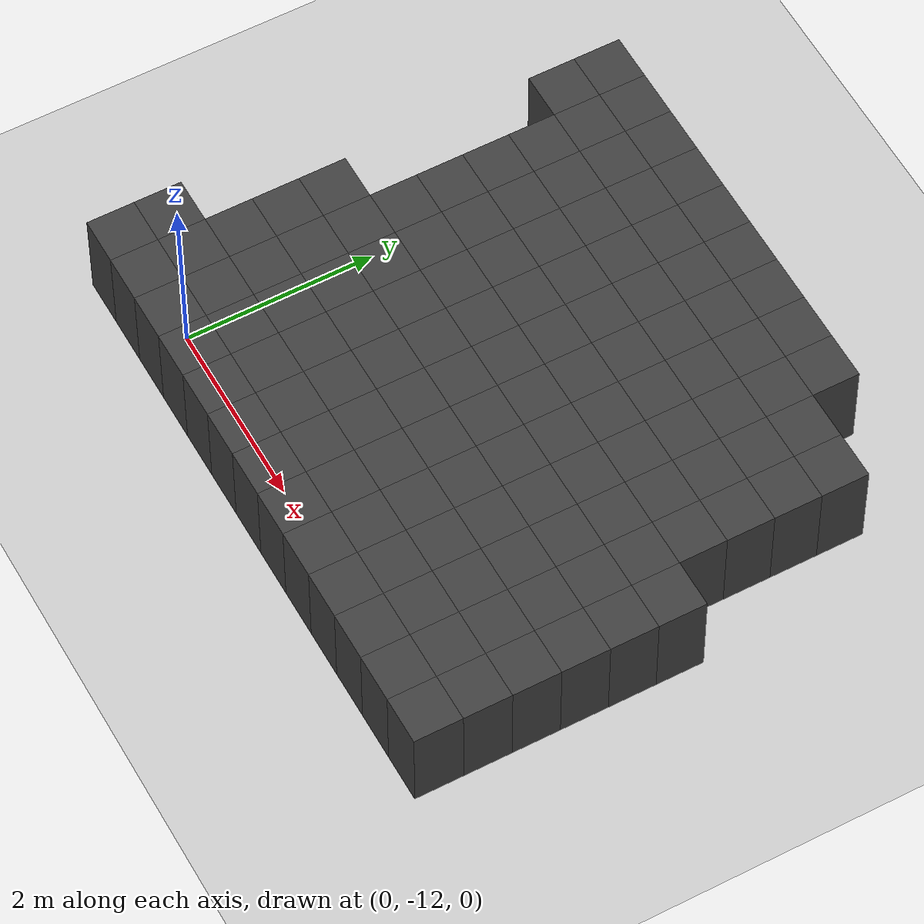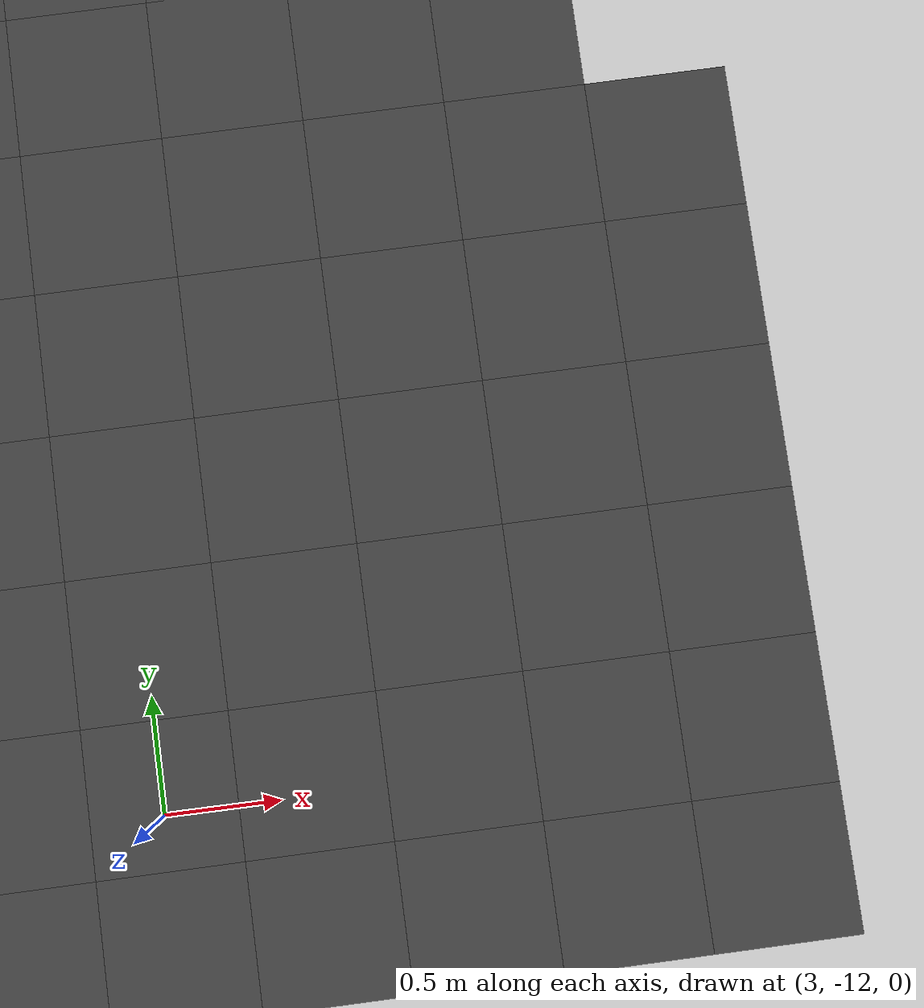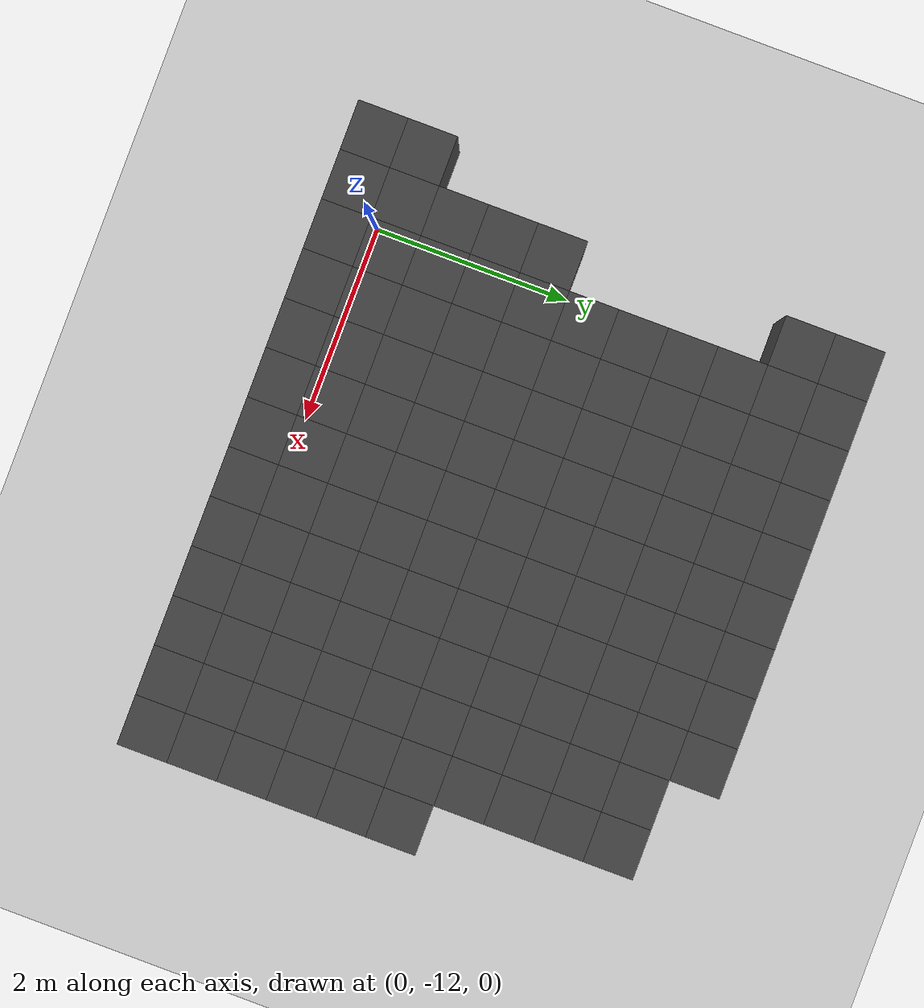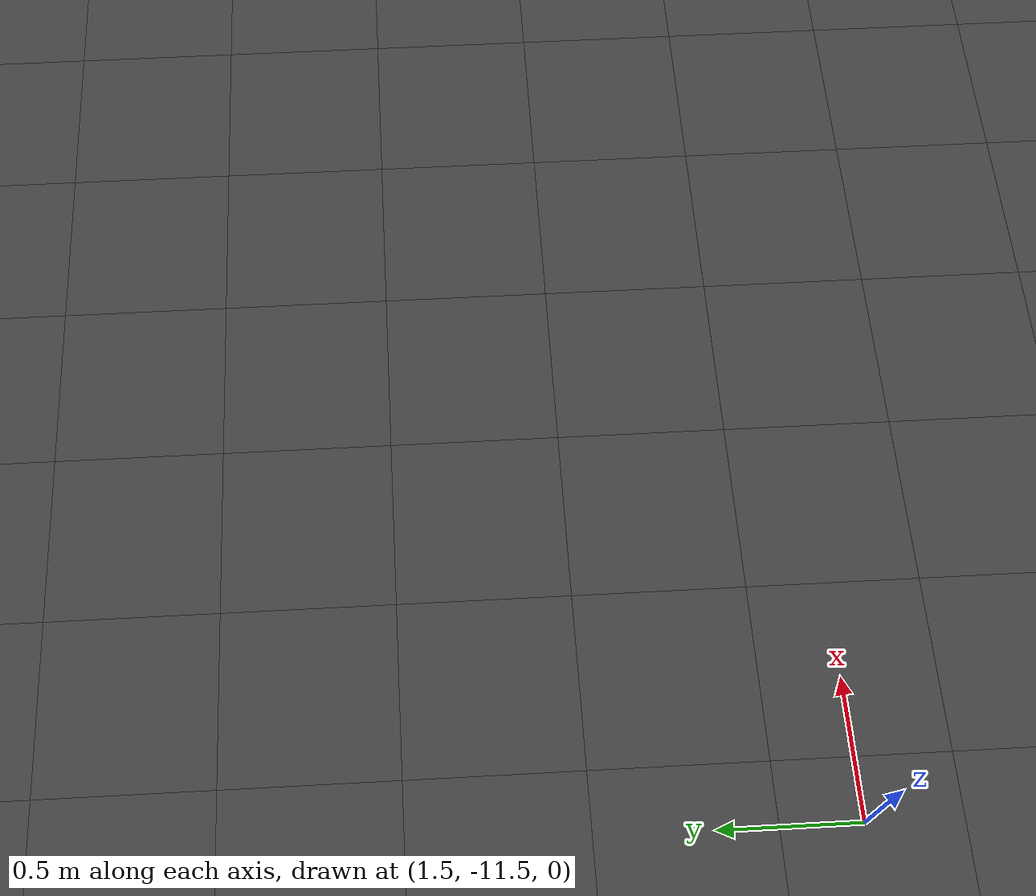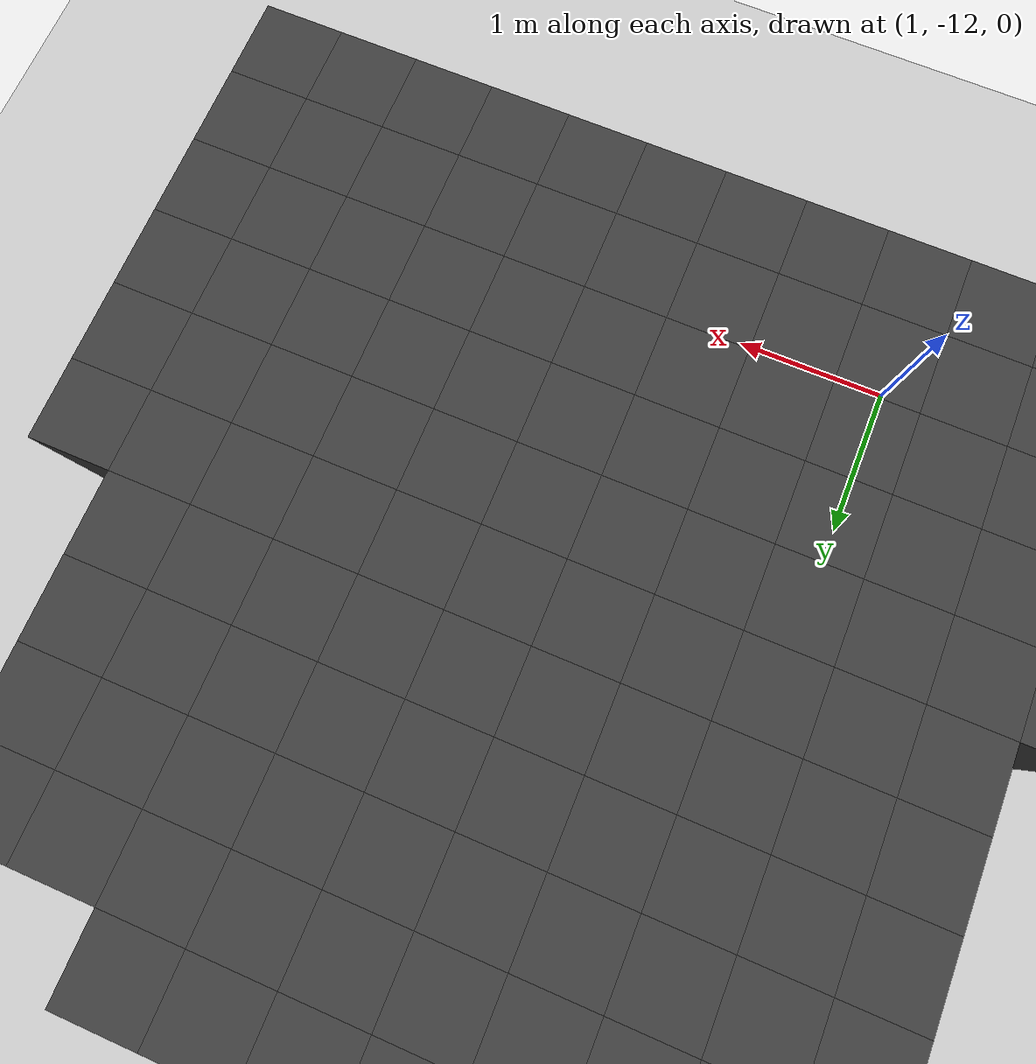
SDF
<sdf version="1.7">
 <world name="map_14074">
  <model name="ground_plane">
   <static>true</static>
   <link name="link">
    <collision name="collision">
     <geometry><plane><normal>0 0 1</normal><size>200 200</size></plane></geometry>
    </collision>
    <visual name="visual">
     <geometry><plane><normal>0 0 1</normal><size>200 200</size></plane></geometry>
     <material><ambient>0.8 0.8 0.8 1</ambient><diffuse>0.8 0.8 0.8 1</diffuse></material>
    </visual>
   </link>
  </model>
  <model name="maze_environment">
   <static>true</static>
   <link name="wall_1431">
    <pose>-0.250 -7.250 0.500 0 0 0</pose>
    <collision name="col"><geometry><box><size>0.5 0.5 1.0</size></box></geometry></collision>
    <visual name="vis">
     <geometry><box><size>0.5 0.5 1.0</size></box></geometry>
     <material><ambient>0.15 0.15 0.15 1</ambient><diffuse>0.25 0.25 0.25 1</diffuse></material>
    </visual>
   </link>
   <link name="wall_1432">
    <pose>0.250 -7.250 0.500 0 0 0</pose>
    <collision name="col"><geometry><box><size>0.5 0.5 1.0</size></box></geometry></collision>
    <visual name="vis">
     <geometry><box><size>0.5 0.5 1.0</size></box></geometry>
     <material><ambient>0.15 0.15 0.15 1</ambient><diffuse>0.25 0.25 0.25 1</diffuse></material>
    </visual>
   </link>
   <link name="wall_1433">
    <pose>0.750 -7.250 0.500 0 0 0</pose>
    <collision name="col"><geometry><box><size>0.5 0.5 1.0</size></box></geometry></collision>
    <visual name="vis">
     <geometry><box><size>0.5 0.5 1.0</size></box></geometry>
     <material><ambient>0.15 0.15 0.15 1</ambient><diffuse>0.25 0.25 0.25 1</diffuse></material>
    </visual>
   </link>
   <link name="wall_1434">
    <pose>1.250 -7.250 0.500 0 0 0</pose>
    <collision name="col"><geometry><box><size>0.5 0.5 1.0</size></box></geometry></collision>
    <visual name="vis">
     <geometry><box><size>0.5 0.5 1.0</size></box></geometry>
     <material><ambient>0.15 0.15 0.15 1</ambient><diffuse>0.25 0.25 0.25 1</diffuse></material>
    </visual>
   </link>
   <link name="wall_1435">
    <pose>1.750 -7.250 0.500 0 0 0</pose>
    <collision name="col"><geometry><box><size>0.5 0.5 1.0</size></box></geometry></collision>
    <visual name="vis">
     <geometry><box><size>0.5 0.5 1.0</size></box></geometry>
     <material><ambient>0.15 0.15 0.15 1</ambient><diffuse>0.25 0.25 0.25 1</diffuse></material>
    </visual>
   </link>
   <link name="wall_1436">
    <pose>2.250 -7.250 0.500 0 0 0</pose>
    <collision name="col"><geometry><box><size>0.5 0.5 1.0</size></box></geometry></collision>
    <visual name="vis">
     <geometry><box><size>0.5 0.5 1.0</size></box></geometry>
     <material><ambient>0.15 0.15 0.15 1</ambient><diffuse>0.25 0.25 0.25 1</diffuse></material>
    </visual>
   </link>
   <link name="wall_1437">
    <pose>2.750 -7.250 0.500 0 0 0</pose>
    <collision name="col"><geometry><box><size>0.5 0.5 1.0</size></box></geometry></collision>
    <visual name="vis">
     <geometry><box><size>0.5 0.5 1.0</size></box></geometry>
     <material><ambient>0.15 0.15 0.15 1</ambient><diffuse>0.25 0.25 0.25 1</diffuse></material>
    </visual>
   </link>
   <link name="wall_1438">
    <pose>3.250 -7.250 0.500 0 0 0</pose>
    <collision name="col"><geometry><box><size>0.5 0.5 1.0</size></box></geometry></collision>
    <visual name="vis">
     <geometry><box><size>0.5 0.5 1.0</size></box></geometry>
     <material><ambient>0.15 0.15 0.15 1</ambient><diffuse>0.25 0.25 0.25 1</diffuse></material>
    </visual>
   </link>
   <link name="wall_1439">
    <pose>3.750 -7.250 0.500 0 0 0</pose>
    <collision name="col"><geometry><box><size>0.5 0.5 1.0</size></box></geometry></collision>
    <visual name="vis">
     <geometry><box><size>0.5 0.5 1.0</size></box></geometry>
     <material><ambient>0.15 0.15 0.15 1</ambient><diffuse>0.25 0.25 0.25 1</diffuse></material>
    </visual>
   </link>
   <link name="wall_1456">
    <pose>-0.250 -7.750 0.500 0 0 0</pose>
    <collision name="col"><geometry><box><size>0.5 0.5 1.0</size></box></geometry></collision>
    <visual name="vis">
     <geometry><box><size>0.5 0.5 1.0</size></box></geometry>
     <material><ambient>0.15 0.15 0.15 1</ambient><diffuse>0.25 0.25 0.25 1</diffuse></material>
    </visual>
   </link>
   <link name="wall_1457">
    <pose>0.250 -7.750 0.500 0 0 0</pose>
    <collision name="col"><geometry><box><size>0.5 0.5 1.0</size></box></geometry></collision>
    <visual name="vis">
     <geometry><box><size>0.5 0.5 1.0</size></box></geometry>
     <material><ambient>0.15 0.15 0.15 1</ambient><diffuse>0.25 0.25 0.25 1</diffuse></material>
    </visual>
   </link>
   <link name="wall_1458">
    <pose>0.750 -7.750 0.500 0 0 0</pose>
    <collision name="col"><geometry><box><size>0.5 0.5 1.0</size></box></geometry></collision>
    <visual name="vis">
     <geometry><box><size>0.5 0.5 1.0</size></box></geometry>
     <material><ambient>0.15 0.15 0.15 1</ambient><diffuse>0.25 0.25 0.25 1</diffuse></material>
    </visual>
   </link>
   <link name="wall_1459">
    <pose>1.250 -7.750 0.500 0 0 0</pose>
    <collision name="col"><geometry><box><size>0.5 0.5 1.0</size></box></geometry></collision>
    <visual name="vis">
     <geometry><box><size>0.5 0.5 1.0</size></box></geometry>
     <material><ambient>0.15 0.15 0.15 1</ambient><diffuse>0.25 0.25 0.25 1</diffuse></material>
    </visual>
   </link>
   <link name="wall_1460">
    <pose>1.750 -7.750 0.500 0 0 0</pose>
    <collision name="col"><geometry><box><size>0.5 0.5 1.0</size></box></geometry></collision>
    <visual name="vis">
     <geometry><box><size>0.5 0.5 1.0</size></box></geometry>
     <material><ambient>0.15 0.15 0.15 1</ambient><diffuse>0.25 0.25 0.25 1</diffuse></material>
    </visual>
   </link>
   <link name="wall_1461">
    <pose>2.250 -7.750 0.500 0 0 0</pose>
    <collision name="col"><geometry><box><size>0.5 0.5 1.0</size></box></geometry></collision>
    <visual name="vis">
     <geometry><box><size>0.5 0.5 1.0</size></box></geometry>
     <material><ambient>0.15 0.15 0.15 1</ambient><diffuse>0.25 0.25 0.25 1</diffuse></material>
    </visual>
   </link>
   <link name="wall_1462">
    <pose>2.750 -7.750 0.500 0 0 0</pose>
    <collision name="col"><geometry><box><size>0.5 0.5 1.0</size></box></geometry></collision>
    <visual name="vis">
     <geometry><box><size>0.5 0.5 1.0</size></box></geometry>
     <material><ambient>0.15 0.15 0.15 1</ambient><diffuse>0.25 0.25 0.25 1</diffuse></material>
    </visual>
   </link>
   <link name="wall_1463">
    <pose>3.250 -7.750 0.500 0 0 0</pose>
    <collision name="col"><geometry><box><size>0.5 0.5 1.0</size></box></geometry></collision>
    <visual name="vis">
     <geometry><box><size>0.5 0.5 1.0</size></box></geometry>
     <material><ambient>0.15 0.15 0.15 1</ambient><diffuse>0.25 0.25 0.25 1</diffuse></material>
    </visual>
   </link>
   <link name="wall_1464">
    <pose>3.750 -7.750 0.500 0 0 0</pose>
    <collision name="col"><geometry><box><size>0.5 0.5 1.0</size></box></geometry></collision>
    <visual name="vis">
     <geometry><box><size>0.5 0.5 1.0</size></box></geometry>
     <material><ambient>0.15 0.15 0.15 1</ambient><diffuse>0.25 0.25 0.25 1</diffuse></material>
    </visual>
   </link>
   <link name="wall_1465">
    <pose>4.250 -7.750 0.500 0 0 0</pose>
    <collision name="col"><geometry><box><size>0.5 0.5 1.0</size></box></geometry></collision>
    <visual name="vis">
     <geometry><box><size>0.5 0.5 1.0</size></box></geometry>
     <material><ambient>0.15 0.15 0.15 1</ambient><diffuse>0.25 0.25 0.25 1</diffuse></material>
    </visual>
   </link>
   <link name="wall_1466">
    <pose>4.750 -7.750 0.500 0 0 0</pose>
    <collision name="col"><geometry><box><size>0.5 0.5 1.0</size></box></geometry></collision>
    <visual name="vis">
     <geometry><box><size>0.5 0.5 1.0</size></box></geometry>
     <material><ambient>0.15 0.15 0.15 1</ambient><diffuse>0.25 0.25 0.25 1</diffuse></material>
    </visual>
   </link>
   <link name="wall_1484">
    <pose>0.250 -8.250 0.500 0 0 0</pose>
    <collision name="col"><geometry><box><size>0.5 0.5 1.0</size></box></geometry></collision>
    <visual name="vis">
     <geometry><box><size>0.5 0.5 1.0</size></box></geometry>
     <material><ambient>0.15 0.15 0.15 1</ambient><diffuse>0.25 0.25 0.25 1</diffuse></material>
    </visual>
   </link>
   <link name="wall_1485">
    <pose>0.750 -8.250 0.500 0 0 0</pose>
    <collision name="col"><geometry><box><size>0.5 0.5 1.0</size></box></geometry></collision>
    <visual name="vis">
     <geometry><box><size>0.5 0.5 1.0</size></box></geometry>
     <material><ambient>0.15 0.15 0.15 1</ambient><diffuse>0.25 0.25 0.25 1</diffuse></material>
    </visual>
   </link>
   <link name="wall_1486">
    <pose>1.250 -8.250 0.500 0 0 0</pose>
    <collision name="col"><geometry><box><size>0.5 0.5 1.0</size></box></geometry></collision>
    <visual name="vis">
     <geometry><box><size>0.5 0.5 1.0</size></box></geometry>
     <material><ambient>0.15 0.15 0.15 1</ambient><diffuse>0.25 0.25 0.25 1</diffuse></material>
    </visual>
   </link>
   <link name="wall_1487">
    <pose>1.750 -8.250 0.500 0 0 0</pose>
    <collision name="col"><geometry><box><size>0.5 0.5 1.0</size></box></geometry></collision>
    <visual name="vis">
     <geometry><box><size>0.5 0.5 1.0</size></box></geometry>
     <material><ambient>0.15 0.15 0.15 1</ambient><diffuse>0.25 0.25 0.25 1</diffuse></material>
    </visual>
   </link>
   <link name="wall_1488">
    <pose>2.250 -8.250 0.500 0 0 0</pose>
    <collision name="col"><geometry><box><size>0.5 0.5 1.0</size></box></geometry></collision>
    <visual name="vis">
     <geometry><box><size>0.5 0.5 1.0</size></box></geometry>
     <material><ambient>0.15 0.15 0.15 1</ambient><diffuse>0.25 0.25 0.25 1</diffuse></material>
    </visual>
   </link>
   <link name="wall_1489">
    <pose>2.750 -8.250 0.500 0 0 0</pose>
    <collision name="col"><geometry><box><size>0.5 0.5 1.0</size></box></geometry></collision>
    <visual name="vis">
     <geometry><box><size>0.5 0.5 1.0</size></box></geometry>
     <material><ambient>0.15 0.15 0.15 1</ambient><diffuse>0.25 0.25 0.25 1</diffuse></material>
    </visual>
   </link>
   <link name="wall_1490">
    <pose>3.250 -8.250 0.500 0 0 0</pose>
    <collision name="col"><geometry><box><size>0.5 0.5 1.0</size></box></geometry></collision>
    <visual name="vis">
     <geometry><box><size>0.5 0.5 1.0</size></box></geometry>
     <material><ambient>0.15 0.15 0.15 1</ambient><diffuse>0.25 0.25 0.25 1</diffuse></material>
    </visual>
   </link>
   <link name="wall_1491">
    <pose>3.750 -8.250 0.500 0 0 0</pose>
    <collision name="col"><geometry><box><size>0.5 0.5 1.0</size></box></geometry></collision>
    <visual name="vis">
     <geometry><box><size>0.5 0.5 1.0</size></box></geometry>
     <material><ambient>0.15 0.15 0.15 1</ambient><diffuse>0.25 0.25 0.25 1</diffuse></material>
    </visual>
   </link>
   <link name="wall_1492">
    <pose>4.250 -8.250 0.500 0 0 0</pose>
    <collision name="col"><geometry><box><size>0.5 0.5 1.0</size></box></geometry></collision>
    <visual name="vis">
     <geometry><box><size>0.5 0.5 1.0</size></box></geometry>
     <material><ambient>0.15 0.15 0.15 1</ambient><diffuse>0.25 0.25 0.25 1</diffuse></material>
    </visual>
   </link>
   <link name="wall_1493">
    <pose>4.750 -8.250 0.500 0 0 0</pose>
    <collision name="col"><geometry><box><size>0.5 0.5 1.0</size></box></geometry></collision>
    <visual name="vis">
     <geometry><box><size>0.5 0.5 1.0</size></box></geometry>
     <material><ambient>0.15 0.15 0.15 1</ambient><diffuse>0.25 0.25 0.25 1</diffuse></material>
    </visual>
   </link>
   <link name="wall_1519">
    <pose>0.250 -8.750 0.500 0 0 0</pose>
    <collision name="col"><geometry><box><size>0.5 0.5 1.0</size></box></geometry></collision>
    <visual name="vis">
     <geometry><box><size>0.5 0.5 1.0</size></box></geometry>
     <material><ambient>0.15 0.15 0.15 1</ambient><diffuse>0.25 0.25 0.25 1</diffuse></material>
    </visual>
   </link>
   <link name="wall_1520">
    <pose>0.750 -8.750 0.500 0 0 0</pose>
    <collision name="col"><geometry><box><size>0.5 0.5 1.0</size></box></geometry></collision>
    <visual name="vis">
     <geometry><box><size>0.5 0.5 1.0</size></box></geometry>
     <material><ambient>0.15 0.15 0.15 1</ambient><diffuse>0.25 0.25 0.25 1</diffuse></material>
    </visual>
   </link>
   <link name="wall_1521">
    <pose>1.250 -8.750 0.500 0 0 0</pose>
    <collision name="col"><geometry><box><size>0.5 0.5 1.0</size></box></geometry></collision>
    <visual name="vis">
     <geometry><box><size>0.5 0.5 1.0</size></box></geometry>
     <material><ambient>0.15 0.15 0.15 1</ambient><diffuse>0.25 0.25 0.25 1</diffuse></material>
    </visual>
   </link>
   <link name="wall_1522">
    <pose>1.750 -8.750 0.500 0 0 0</pose>
    <collision name="col"><geometry><box><size>0.5 0.5 1.0</size></box></geometry></collision>
    <visual name="vis">
     <geometry><box><size>0.5 0.5 1.0</size></box></geometry>
     <material><ambient>0.15 0.15 0.15 1</ambient><diffuse>0.25 0.25 0.25 1</diffuse></material>
    </visual>
   </link>
   <link name="wall_1523">
    <pose>2.250 -8.750 0.500 0 0 0</pose>
    <collision name="col"><geometry><box><size>0.5 0.5 1.0</size></box></geometry></collision>
    <visual name="vis">
     <geometry><box><size>0.5 0.5 1.0</size></box></geometry>
     <material><ambient>0.15 0.15 0.15 1</ambient><diffuse>0.25 0.25 0.25 1</diffuse></material>
    </visual>
   </link>
   <link name="wall_1524">
    <pose>2.750 -8.750 0.500 0 0 0</pose>
    <collision name="col"><geometry><box><size>0.5 0.5 1.0</size></box></geometry></collision>
    <visual name="vis">
     <geometry><box><size>0.5 0.5 1.0</size></box></geometry>
     <material><ambient>0.15 0.15 0.15 1</ambient><diffuse>0.25 0.25 0.25 1</diffuse></material>
    </visual>
   </link>
   <link name="wall_1525">
    <pose>3.250 -8.750 0.500 0 0 0</pose>
    <collision name="col"><geometry><box><size>0.5 0.5 1.0</size></box></geometry></collision>
    <visual name="vis">
     <geometry><box><size>0.5 0.5 1.0</size></box></geometry>
     <material><ambient>0.15 0.15 0.15 1</ambient><diffuse>0.25 0.25 0.25 1</diffuse></material>
    </visual>
   </link>
   <link name="wall_1526">
    <pose>3.750 -8.750 0.500 0 0 0</pose>
    <collision name="col"><geometry><box><size>0.5 0.5 1.0</size></box></geometry></collision>
    <visual name="vis">
     <geometry><box><size>0.5 0.5 1.0</size></box></geometry>
     <material><ambient>0.15 0.15 0.15 1</ambient><diffuse>0.25 0.25 0.25 1</diffuse></material>
    </visual>
   </link>
   <link name="wall_1527">
    <pose>4.250 -8.750 0.500 0 0 0</pose>
    <collision name="col"><geometry><box><size>0.5 0.5 1.0</size></box></geometry></collision>
    <visual name="vis">
     <geometry><box><size>0.5 0.5 1.0</size></box></geometry>
     <material><ambient>0.15 0.15 0.15 1</ambient><diffuse>0.25 0.25 0.25 1</diffuse></material>
    </visual>
   </link>
   <link name="wall_1528">
    <pose>4.750 -8.750 0.500 0 0 0</pose>
    <collision name="col"><geometry><box><size>0.5 0.5 1.0</size></box></geometry></collision>
    <visual name="vis">
     <geometry><box><size>0.5 0.5 1.0</size></box></geometry>
     <material><ambient>0.15 0.15 0.15 1</ambient><diffuse>0.25 0.25 0.25 1</diffuse></material>
    </visual>
   </link>
   <link name="wall_1558">
    <pose>0.250 -9.250 0.500 0 0 0</pose>
    <collision name="col"><geometry><box><size>0.5 0.5 1.0</size></box></geometry></collision>
    <visual name="vis">
     <geometry><box><size>0.5 0.5 1.0</size></box></geometry>
     <material><ambient>0.15 0.15 0.15 1</ambient><diffuse>0.25 0.25 0.25 1</diffuse></material>
    </visual>
   </link>
   <link name="wall_1559">
    <pose>0.750 -9.250 0.500 0 0 0</pose>
    <collision name="col"><geometry><box><size>0.5 0.5 1.0</size></box></geometry></collision>
    <visual name="vis">
     <geometry><box><size>0.5 0.5 1.0</size></box></geometry>
     <material><ambient>0.15 0.15 0.15 1</ambient><diffuse>0.25 0.25 0.25 1</diffuse></material>
    </visual>
   </link>
   <link name="wall_1560">
    <pose>1.250 -9.250 0.500 0 0 0</pose>
    <collision name="col"><geometry><box><size>0.5 0.5 1.0</size></box></geometry></collision>
    <visual name="vis">
     <geometry><box><size>0.5 0.5 1.0</size></box></geometry>
     <material><ambient>0.15 0.15 0.15 1</ambient><diffuse>0.25 0.25 0.25 1</diffuse></material>
    </visual>
   </link>
   <link name="wall_1561">
    <pose>1.750 -9.250 0.500 0 0 0</pose>
    <collision name="col"><geometry><box><size>0.5 0.5 1.0</size></box></geometry></collision>
    <visual name="vis">
     <geometry><box><size>0.5 0.5 1.0</size></box></geometry>
     <material><ambient>0.15 0.15 0.15 1</ambient><diffuse>0.25 0.25 0.25 1</diffuse></material>
    </visual>
   </link>
   <link name="wall_1562">
    <pose>2.250 -9.250 0.500 0 0 0</pose>
    <collision name="col"><geometry><box><size>0.5 0.5 1.0</size></box></geometry></collision>
    <visual name="vis">
     <geometry><box><size>0.5 0.5 1.0</size></box></geometry>
     <material><ambient>0.15 0.15 0.15 1</ambient><diffuse>0.25 0.25 0.25 1</diffuse></material>
    </visual>
   </link>
   <link name="wall_1563">
    <pose>2.750 -9.250 0.500 0 0 0</pose>
    <collision name="col"><geometry><box><size>0.5 0.5 1.0</size></box></geometry></collision>
    <visual name="vis">
     <geometry><box><size>0.5 0.5 1.0</size></box></geometry>
     <material><ambient>0.15 0.15 0.15 1</ambient><diffuse>0.25 0.25 0.25 1</diffuse></material>
    </visual>
   </link>
   <link name="wall_1564">
    <pose>3.250 -9.250 0.500 0 0 0</pose>
    <collision name="col"><geometry><box><size>0.5 0.5 1.0</size></box></geometry></collision>
    <visual name="vis">
     <geometry><box><size>0.5 0.5 1.0</size></box></geometry>
     <material><ambient>0.15 0.15 0.15 1</ambient><diffuse>0.25 0.25 0.25 1</diffuse></material>
    </visual>
   </link>
   <link name="wall_1565">
    <pose>3.750 -9.250 0.500 0 0 0</pose>
    <collision name="col"><geometry><box><size>0.5 0.5 1.0</size></box></geometry></collision>
    <visual name="vis">
     <geometry><box><size>0.5 0.5 1.0</size></box></geometry>
     <material><ambient>0.15 0.15 0.15 1</ambient><diffuse>0.25 0.25 0.25 1</diffuse></material>
    </visual>
   </link>
   <link name="wall_1566">
    <pose>4.250 -9.250 0.500 0 0 0</pose>
    <collision name="col"><geometry><box><size>0.5 0.5 1.0</size></box></geometry></collision>
    <visual name="vis">
     <geometry><box><size>0.5 0.5 1.0</size></box></geometry>
     <material><ambient>0.15 0.15 0.15 1</ambient><diffuse>0.25 0.25 0.25 1</diffuse></material>
    </visual>
   </link>
   <link name="wall_1567">
    <pose>4.750 -9.250 0.500 0 0 0</pose>
    <collision name="col"><geometry><box><size>0.5 0.5 1.0</size></box></geometry></collision>
    <visual name="vis">
     <geometry><box><size>0.5 0.5 1.0</size></box></geometry>
     <material><ambient>0.15 0.15 0.15 1</ambient><diffuse>0.25 0.25 0.25 1</diffuse></material>
    </visual>
   </link>
   <link name="wall_1597">
    <pose>0.250 -9.750 0.500 0 0 0</pose>
    <collision name="col"><geometry><box><size>0.5 0.5 1.0</size></box></geometry></collision>
    <visual name="vis">
     <geometry><box><size>0.5 0.5 1.0</size></box></geometry>
     <material><ambient>0.15 0.15 0.15 1</ambient><diffuse>0.25 0.25 0.25 1</diffuse></material>
    </visual>
   </link>
   <link name="wall_1598">
    <pose>0.750 -9.750 0.500 0 0 0</pose>
    <collision name="col"><geometry><box><size>0.5 0.5 1.0</size></box></geometry></collision>
    <visual name="vis">
     <geometry><box><size>0.5 0.5 1.0</size></box></geometry>
     <material><ambient>0.15 0.15 0.15 1</ambient><diffuse>0.25 0.25 0.25 1</diffuse></material>
    </visual>
   </link>
   <link name="wall_1599">
    <pose>1.250 -9.750 0.500 0 0 0</pose>
    <collision name="col"><geometry><box><size>0.5 0.5 1.0</size></box></geometry></collision>
    <visual name="vis">
     <geometry><box><size>0.5 0.5 1.0</size></box></geometry>
     <material><ambient>0.15 0.15 0.15 1</ambient><diffuse>0.25 0.25 0.25 1</diffuse></material>
    </visual>
   </link>
   <link name="wall_1600">
    <pose>1.750 -9.750 0.500 0 0 0</pose>
    <collision name="col"><geometry><box><size>0.5 0.5 1.0</size></box></geometry></collision>
    <visual name="vis">
     <geometry><box><size>0.5 0.5 1.0</size></box></geometry>
     <material><ambient>0.15 0.15 0.15 1</ambient><diffuse>0.25 0.25 0.25 1</diffuse></material>
    </visual>
   </link>
   <link name="wall_1601">
    <pose>2.250 -9.750 0.500 0 0 0</pose>
    <collision name="col"><geometry><box><size>0.5 0.5 1.0</size></box></geometry></collision>
    <visual name="vis">
     <geometry><box><size>0.5 0.5 1.0</size></box></geometry>
     <material><ambient>0.15 0.15 0.15 1</ambient><diffuse>0.25 0.25 0.25 1</diffuse></material>
    </visual>
   </link>
   <link name="wall_1602">
    <pose>2.750 -9.750 0.500 0 0 0</pose>
    <collision name="col"><geometry><box><size>0.5 0.5 1.0</size></box></geometry></collision>
    <visual name="vis">
     <geometry><box><size>0.5 0.5 1.0</size></box></geometry>
     <material><ambient>0.15 0.15 0.15 1</ambient><diffuse>0.25 0.25 0.25 1</diffuse></material>
    </visual>
   </link>
   <link name="wall_1603">
    <pose>3.250 -9.750 0.500 0 0 0</pose>
    <collision name="col"><geometry><box><size>0.5 0.5 1.0</size></box></geometry></collision>
    <visual name="vis">
     <geometry><box><size>0.5 0.5 1.0</size></box></geometry>
     <material><ambient>0.15 0.15 0.15 1</ambient><diffuse>0.25 0.25 0.25 1</diffuse></material>
    </visual>
   </link>
   <link name="wall_1604">
    <pose>3.750 -9.750 0.500 0 0 0</pose>
    <collision name="col"><geometry><box><size>0.5 0.5 1.0</size></box></geometry></collision>
    <visual name="vis">
     <geometry><box><size>0.5 0.5 1.0</size></box></geometry>
     <material><ambient>0.15 0.15 0.15 1</ambient><diffuse>0.25 0.25 0.25 1</diffuse></material>
    </visual>
   </link>
   <link name="wall_1605">
    <pose>4.250 -9.750 0.500 0 0 0</pose>
    <collision name="col"><geometry><box><size>0.5 0.5 1.0</size></box></geometry></collision>
    <visual name="vis">
     <geometry><box><size>0.5 0.5 1.0</size></box></geometry>
     <material><ambient>0.15 0.15 0.15 1</ambient><diffuse>0.25 0.25 0.25 1</diffuse></material>
    </visual>
   </link>
   <link name="wall_1606">
    <pose>4.750 -9.750 0.500 0 0 0</pose>
    <collision name="col"><geometry><box><size>0.5 0.5 1.0</size></box></geometry></collision>
    <visual name="vis">
     <geometry><box><size>0.5 0.5 1.0</size></box></geometry>
     <material><ambient>0.15 0.15 0.15 1</ambient><diffuse>0.25 0.25 0.25 1</diffuse></material>
    </visual>
   </link>
   <link name="wall_1607">
    <pose>5.250 -9.750 0.500 0 0 0</pose>
    <collision name="col"><geometry><box><size>0.5 0.5 1.0</size></box></geometry></collision>
    <visual name="vis">
     <geometry><box><size>0.5 0.5 1.0</size></box></geometry>
     <material><ambient>0.15 0.15 0.15 1</ambient><diffuse>0.25 0.25 0.25 1</diffuse></material>
    </visual>
   </link>
   <link name="wall_1637">
    <pose>-0.250 -10.250 0.500 0 0 0</pose>
    <collision name="col"><geometry><box><size>0.5 0.5 1.0</size></box></geometry></collision>
    <visual name="vis">
     <geometry><box><size>0.5 0.5 1.0</size></box></geometry>
     <material><ambient>0.15 0.15 0.15 1</ambient><diffuse>0.25 0.25 0.25 1</diffuse></material>
    </visual>
   </link>
   <link name="wall_1638">
    <pose>0.250 -10.250 0.500 0 0 0</pose>
    <collision name="col"><geometry><box><size>0.5 0.5 1.0</size></box></geometry></collision>
    <visual name="vis">
     <geometry><box><size>0.5 0.5 1.0</size></box></geometry>
     <material><ambient>0.15 0.15 0.15 1</ambient><diffuse>0.25 0.25 0.25 1</diffuse></material>
    </visual>
   </link>
   <link name="wall_1639">
    <pose>0.750 -10.250 0.500 0 0 0</pose>
    <collision name="col"><geometry><box><size>0.5 0.5 1.0</size></box></geometry></collision>
    <visual name="vis">
     <geometry><box><size>0.5 0.5 1.0</size></box></geometry>
     <material><ambient>0.15 0.15 0.15 1</ambient><diffuse>0.25 0.25 0.25 1</diffuse></material>
    </visual>
   </link>
   <link name="wall_1640">
    <pose>1.250 -10.250 0.500 0 0 0</pose>
    <collision name="col"><geometry><box><size>0.5 0.5 1.0</size></box></geometry></collision>
    <visual name="vis">
     <geometry><box><size>0.5 0.5 1.0</size></box></geometry>
     <material><ambient>0.15 0.15 0.15 1</ambient><diffuse>0.25 0.25 0.25 1</diffuse></material>
    </visual>
   </link>
   <link name="wall_1641">
    <pose>1.750 -10.250 0.500 0 0 0</pose>
    <collision name="col"><geometry><box><size>0.5 0.5 1.0</size></box></geometry></collision>
    <visual name="vis">
     <geometry><box><size>0.5 0.5 1.0</size></box></geometry>
     <material><ambient>0.15 0.15 0.15 1</ambient><diffuse>0.25 0.25 0.25 1</diffuse></material>
    </visual>
   </link>
   <link name="wall_1642">
    <pose>2.250 -10.250 0.500 0 0 0</pose>
    <collision name="col"><geometry><box><size>0.5 0.5 1.0</size></box></geometry></collision>
    <visual name="vis">
     <geometry><box><size>0.5 0.5 1.0</size></box></geometry>
     <material><ambient>0.15 0.15 0.15 1</ambient><diffuse>0.25 0.25 0.25 1</diffuse></material>
    </visual>
   </link>
   <link name="wall_1643">
    <pose>2.750 -10.250 0.500 0 0 0</pose>
    <collision name="col"><geometry><box><size>0.5 0.5 1.0</size></box></geometry></collision>
    <visual name="vis">
     <geometry><box><size>0.5 0.5 1.0</size></box></geometry>
     <material><ambient>0.15 0.15 0.15 1</ambient><diffuse>0.25 0.25 0.25 1</diffuse></material>
    </visual>
   </link>
   <link name="wall_1644">
    <pose>3.250 -10.250 0.500 0 0 0</pose>
    <collision name="col"><geometry><box><size>0.5 0.5 1.0</size></box></geometry></collision>
    <visual name="vis">
     <geometry><box><size>0.5 0.5 1.0</size></box></geometry>
     <material><ambient>0.15 0.15 0.15 1</ambient><diffuse>0.25 0.25 0.25 1</diffuse></material>
    </visual>
   </link>
   <link name="wall_1645">
    <pose>3.750 -10.250 0.500 0 0 0</pose>
    <collision name="col"><geometry><box><size>0.5 0.5 1.0</size></box></geometry></collision>
    <visual name="vis">
     <geometry><box><size>0.5 0.5 1.0</size></box></geometry>
     <material><ambient>0.15 0.15 0.15 1</ambient><diffuse>0.25 0.25 0.25 1</diffuse></material>
    </visual>
   </link>
   <link name="wall_1646">
    <pose>4.250 -10.250 0.500 0 0 0</pose>
    <collision name="col"><geometry><box><size>0.5 0.5 1.0</size></box></geometry></collision>
    <visual name="vis">
     <geometry><box><size>0.5 0.5 1.0</size></box></geometry>
     <material><ambient>0.15 0.15 0.15 1</ambient><diffuse>0.25 0.25 0.25 1</diffuse></material>
    </visual>
   </link>
   <link name="wall_1647">
    <pose>4.750 -10.250 0.500 0 0 0</pose>
    <collision name="col"><geometry><box><size>0.5 0.5 1.0</size></box></geometry></collision>
    <visual name="vis">
     <geometry><box><size>0.5 0.5 1.0</size></box></geometry>
     <material><ambient>0.15 0.15 0.15 1</ambient><diffuse>0.25 0.25 0.25 1</diffuse></material>
    </visual>
   </link>
   <link name="wall_1648">
    <pose>5.250 -10.250 0.500 0 0 0</pose>
    <collision name="col"><geometry><box><size>0.5 0.5 1.0</size></box></geometry></collision>
    <visual name="vis">
     <geometry><box><size>0.5 0.5 1.0</size></box></geometry>
     <material><ambient>0.15 0.15 0.15 1</ambient><diffuse>0.25 0.25 0.25 1</diffuse></material>
    </visual>
   </link>
   <link name="wall_1686">
    <pose>-0.250 -10.750 0.500 0 0 0</pose>
    <collision name="col"><geometry><box><size>0.5 0.5 1.0</size></box></geometry></collision>
    <visual name="vis">
     <geometry><box><size>0.5 0.5 1.0</size></box></geometry>
     <material><ambient>0.15 0.15 0.15 1</ambient><diffuse>0.25 0.25 0.25 1</diffuse></material>
    </visual>
   </link>
   <link name="wall_1687">
    <pose>0.250 -10.750 0.500 0 0 0</pose>
    <collision name="col"><geometry><box><size>0.5 0.5 1.0</size></box></geometry></collision>
    <visual name="vis">
     <geometry><box><size>0.5 0.5 1.0</size></box></geometry>
     <material><ambient>0.15 0.15 0.15 1</ambient><diffuse>0.25 0.25 0.25 1</diffuse></material>
    </visual>
   </link>
   <link name="wall_1688">
    <pose>0.750 -10.750 0.500 0 0 0</pose>
    <collision name="col"><geometry><box><size>0.5 0.5 1.0</size></box></geometry></collision>
    <visual name="vis">
     <geometry><box><size>0.5 0.5 1.0</size></box></geometry>
     <material><ambient>0.15 0.15 0.15 1</ambient><diffuse>0.25 0.25 0.25 1</diffuse></material>
    </visual>
   </link>
   <link name="wall_1689">
    <pose>1.250 -10.750 0.500 0 0 0</pose>
    <collision name="col"><geometry><box><size>0.5 0.5 1.0</size></box></geometry></collision>
    <visual name="vis">
     <geometry><box><size>0.5 0.5 1.0</size></box></geometry>
     <material><ambient>0.15 0.15 0.15 1</ambient><diffuse>0.25 0.25 0.25 1</diffuse></material>
    </visual>
   </link>
   <link name="wall_1690">
    <pose>1.750 -10.750 0.500 0 0 0</pose>
    <collision name="col"><geometry><box><size>0.5 0.5 1.0</size></box></geometry></collision>
    <visual name="vis">
     <geometry><box><size>0.5 0.5 1.0</size></box></geometry>
     <material><ambient>0.15 0.15 0.15 1</ambient><diffuse>0.25 0.25 0.25 1</diffuse></material>
    </visual>
   </link>
   <link name="wall_1691">
    <pose>2.250 -10.750 0.500 0 0 0</pose>
    <collision name="col"><geometry><box><size>0.5 0.5 1.0</size></box></geometry></collision>
    <visual name="vis">
     <geometry><box><size>0.5 0.5 1.0</size></box></geometry>
     <material><ambient>0.15 0.15 0.15 1</ambient><diffuse>0.25 0.25 0.25 1</diffuse></material>
    </visual>
   </link>
   <link name="wall_1692">
    <pose>2.750 -10.750 0.500 0 0 0</pose>
    <collision name="col"><geometry><box><size>0.5 0.5 1.0</size></box></geometry></collision>
    <visual name="vis">
     <geometry><box><size>0.5 0.5 1.0</size></box></geometry>
     <material><ambient>0.15 0.15 0.15 1</ambient><diffuse>0.25 0.25 0.25 1</diffuse></material>
    </visual>
   </link>
   <link name="wall_1693">
    <pose>3.250 -10.750 0.500 0 0 0</pose>
    <collision name="col"><geometry><box><size>0.5 0.5 1.0</size></box></geometry></collision>
    <visual name="vis">
     <geometry><box><size>0.5 0.5 1.0</size></box></geometry>
     <material><ambient>0.15 0.15 0.15 1</ambient><diffuse>0.25 0.25 0.25 1</diffuse></material>
    </visual>
   </link>
   <link name="wall_1694">
    <pose>3.750 -10.750 0.500 0 0 0</pose>
    <collision name="col"><geometry><box><size>0.5 0.5 1.0</size></box></geometry></collision>
    <visual name="vis">
     <geometry><box><size>0.5 0.5 1.0</size></box></geometry>
     <material><ambient>0.15 0.15 0.15 1</ambient><diffuse>0.25 0.25 0.25 1</diffuse></material>
    </visual>
   </link>
   <link name="wall_1695">
    <pose>4.250 -10.750 0.500 0 0 0</pose>
    <collision name="col"><geometry><box><size>0.5 0.5 1.0</size></box></geometry></collision>
    <visual name="vis">
     <geometry><box><size>0.5 0.5 1.0</size></box></geometry>
     <material><ambient>0.15 0.15 0.15 1</ambient><diffuse>0.25 0.25 0.25 1</diffuse></material>
    </visual>
   </link>
   <link name="wall_1696">
    <pose>4.750 -10.750 0.500 0 0 0</pose>
    <collision name="col"><geometry><box><size>0.5 0.5 1.0</size></box></geometry></collision>
    <visual name="vis">
     <geometry><box><size>0.5 0.5 1.0</size></box></geometry>
     <material><ambient>0.15 0.15 0.15 1</ambient><diffuse>0.25 0.25 0.25 1</diffuse></material>
    </visual>
   </link>
   <link name="wall_1697">
    <pose>5.250 -10.750 0.500 0 0 0</pose>
    <collision name="col"><geometry><box><size>0.5 0.5 1.0</size></box></geometry></collision>
    <visual name="vis">
     <geometry><box><size>0.5 0.5 1.0</size></box></geometry>
     <material><ambient>0.15 0.15 0.15 1</ambient><diffuse>0.25 0.25 0.25 1</diffuse></material>
    </visual>
   </link>
   <link name="wall_1732">
    <pose>-0.250 -11.250 0.500 0 0 0</pose>
    <collision name="col"><geometry><box><size>0.5 0.5 1.0</size></box></geometry></collision>
    <visual name="vis">
     <geometry><box><size>0.5 0.5 1.0</size></box></geometry>
     <material><ambient>0.15 0.15 0.15 1</ambient><diffuse>0.25 0.25 0.25 1</diffuse></material>
    </visual>
   </link>
   <link name="wall_1733">
    <pose>0.250 -11.250 0.500 0 0 0</pose>
    <collision name="col"><geometry><box><size>0.5 0.5 1.0</size></box></geometry></collision>
    <visual name="vis">
     <geometry><box><size>0.5 0.5 1.0</size></box></geometry>
     <material><ambient>0.15 0.15 0.15 1</ambient><diffuse>0.25 0.25 0.25 1</diffuse></material>
    </visual>
   </link>
   <link name="wall_1734">
    <pose>0.750 -11.250 0.500 0 0 0</pose>
    <collision name="col"><geometry><box><size>0.5 0.5 1.0</size></box></geometry></collision>
    <visual name="vis">
     <geometry><box><size>0.5 0.5 1.0</size></box></geometry>
     <material><ambient>0.15 0.15 0.15 1</ambient><diffuse>0.25 0.25 0.25 1</diffuse></material>
    </visual>
   </link>
   <link name="wall_1735">
    <pose>1.250 -11.250 0.500 0 0 0</pose>
    <collision name="col"><geometry><box><size>0.5 0.5 1.0</size></box></geometry></collision>
    <visual name="vis">
     <geometry><box><size>0.5 0.5 1.0</size></box></geometry>
     <material><ambient>0.15 0.15 0.15 1</ambient><diffuse>0.25 0.25 0.25 1</diffuse></material>
    </visual>
   </link>
   <link name="wall_1736">
    <pose>1.750 -11.250 0.500 0 0 0</pose>
    <collision name="col"><geometry><box><size>0.5 0.5 1.0</size></box></geometry></collision>
    <visual name="vis">
     <geometry><box><size>0.5 0.5 1.0</size></box></geometry>
     <material><ambient>0.15 0.15 0.15 1</ambient><diffuse>0.25 0.25 0.25 1</diffuse></material>
    </visual>
   </link>
   <link name="wall_1737">
    <pose>2.250 -11.250 0.500 0 0 0</pose>
    <collision name="col"><geometry><box><size>0.5 0.5 1.0</size></box></geometry></collision>
    <visual name="vis">
     <geometry><box><size>0.5 0.5 1.0</size></box></geometry>
     <material><ambient>0.15 0.15 0.15 1</ambient><diffuse>0.25 0.25 0.25 1</diffuse></material>
    </visual>
   </link>
   <link name="wall_1738">
    <pose>2.750 -11.250 0.500 0 0 0</pose>
    <collision name="col"><geometry><box><size>0.5 0.5 1.0</size></box></geometry></collision>
    <visual name="vis">
     <geometry><box><size>0.5 0.5 1.0</size></box></geometry>
     <material><ambient>0.15 0.15 0.15 1</ambient><diffuse>0.25 0.25 0.25 1</diffuse></material>
    </visual>
   </link>
   <link name="wall_1739">
    <pose>3.250 -11.250 0.500 0 0 0</pose>
    <collision name="col"><geometry><box><size>0.5 0.5 1.0</size></box></geometry></collision>
    <visual name="vis">
     <geometry><box><size>0.5 0.5 1.0</size></box></geometry>
     <material><ambient>0.15 0.15 0.15 1</ambient><diffuse>0.25 0.25 0.25 1</diffuse></material>
    </visual>
   </link>
   <link name="wall_1740">
    <pose>3.750 -11.250 0.500 0 0 0</pose>
    <collision name="col"><geometry><box><size>0.5 0.5 1.0</size></box></geometry></collision>
    <visual name="vis">
     <geometry><box><size>0.5 0.5 1.0</size></box></geometry>
     <material><ambient>0.15 0.15 0.15 1</ambient><diffuse>0.25 0.25 0.25 1</diffuse></material>
    </visual>
   </link>
   <link name="wall_1741">
    <pose>4.250 -11.250 0.500 0 0 0</pose>
    <collision name="col"><geometry><box><size>0.5 0.5 1.0</size></box></geometry></collision>
    <visual name="vis">
     <geometry><box><size>0.5 0.5 1.0</size></box></geometry>
     <material><ambient>0.15 0.15 0.15 1</ambient><diffuse>0.25 0.25 0.25 1</diffuse></material>
    </visual>
   </link>
   <link name="wall_1742">
    <pose>4.750 -11.250 0.500 0 0 0</pose>
    <collision name="col"><geometry><box><size>0.5 0.5 1.0</size></box></geometry></collision>
    <visual name="vis">
     <geometry><box><size>0.5 0.5 1.0</size></box></geometry>
     <material><ambient>0.15 0.15 0.15 1</ambient><diffuse>0.25 0.25 0.25 1</diffuse></material>
    </visual>
   </link>
   <link name="wall_1743">
    <pose>5.250 -11.250 0.500 0 0 0</pose>
    <collision name="col"><geometry><box><size>0.5 0.5 1.0</size></box></geometry></collision>
    <visual name="vis">
     <geometry><box><size>0.5 0.5 1.0</size></box></geometry>
     <material><ambient>0.15 0.15 0.15 1</ambient><diffuse>0.25 0.25 0.25 1</diffuse></material>
    </visual>
   </link>
   <link name="wall_1773">
    <pose>-0.750 -11.750 0.500 0 0 0</pose>
    <collision name="col"><geometry><box><size>0.5 0.5 1.0</size></box></geometry></collision>
    <visual name="vis">
     <geometry><box><size>0.5 0.5 1.0</size></box></geometry>
     <material><ambient>0.15 0.15 0.15 1</ambient><diffuse>0.25 0.25 0.25 1</diffuse></material>
    </visual>
   </link>
   <link name="wall_1774">
    <pose>-0.250 -11.750 0.500 0 0 0</pose>
    <collision name="col"><geometry><box><size>0.5 0.5 1.0</size></box></geometry></collision>
    <visual name="vis">
     <geometry><box><size>0.5 0.5 1.0</size></box></geometry>
     <material><ambient>0.15 0.15 0.15 1</ambient><diffuse>0.25 0.25 0.25 1</diffuse></material>
    </visual>
   </link>
   <link name="wall_1775">
    <pose>0.250 -11.750 0.500 0 0 0</pose>
    <collision name="col"><geometry><box><size>0.5 0.5 1.0</size></box></geometry></collision>
    <visual name="vis">
     <geometry><box><size>0.5 0.5 1.0</size></box></geometry>
     <material><ambient>0.15 0.15 0.15 1</ambient><diffuse>0.25 0.25 0.25 1</diffuse></material>
    </visual>
   </link>
   <link name="wall_1776">
    <pose>0.750 -11.750 0.500 0 0 0</pose>
    <collision name="col"><geometry><box><size>0.5 0.5 1.0</size></box></geometry></collision>
    <visual name="vis">
     <geometry><box><size>0.5 0.5 1.0</size></box></geometry>
     <material><ambient>0.15 0.15 0.15 1</ambient><diffuse>0.25 0.25 0.25 1</diffuse></material>
    </visual>
   </link>
   <link name="wall_1777">
    <pose>1.250 -11.750 0.500 0 0 0</pose>
    <collision name="col"><geometry><box><size>0.5 0.5 1.0</size></box></geometry></collision>
    <visual name="vis">
     <geometry><box><size>0.5 0.5 1.0</size></box></geometry>
     <material><ambient>0.15 0.15 0.15 1</ambient><diffuse>0.25 0.25 0.25 1</diffuse></material>
    </visual>
   </link>
   <link name="wall_1778">
    <pose>1.750 -11.750 0.500 0 0 0</pose>
    <collision name="col"><geometry><box><size>0.5 0.5 1.0</size></box></geometry></collision>
    <visual name="vis">
     <geometry><box><size>0.5 0.5 1.0</size></box></geometry>
     <material><ambient>0.15 0.15 0.15 1</ambient><diffuse>0.25 0.25 0.25 1</diffuse></material>
    </visual>
   </link>
   <link name="wall_1779">
    <pose>2.250 -11.750 0.500 0 0 0</pose>
    <collision name="col"><geometry><box><size>0.5 0.5 1.0</size></box></geometry></collision>
    <visual name="vis">
     <geometry><box><size>0.5 0.5 1.0</size></box></geometry>
     <material><ambient>0.15 0.15 0.15 1</ambient><diffuse>0.25 0.25 0.25 1</diffuse></material>
    </visual>
   </link>
   <link name="wall_1780">
    <pose>2.750 -11.750 0.500 0 0 0</pose>
    <collision name="col"><geometry><box><size>0.5 0.5 1.0</size></box></geometry></collision>
    <visual name="vis">
     <geometry><box><size>0.5 0.5 1.0</size></box></geometry>
     <material><ambient>0.15 0.15 0.15 1</ambient><diffuse>0.25 0.25 0.25 1</diffuse></material>
    </visual>
   </link>
   <link name="wall_1781">
    <pose>3.250 -11.750 0.500 0 0 0</pose>
    <collision name="col"><geometry><box><size>0.5 0.5 1.0</size></box></geometry></collision>
    <visual name="vis">
     <geometry><box><size>0.5 0.5 1.0</size></box></geometry>
     <material><ambient>0.15 0.15 0.15 1</ambient><diffuse>0.25 0.25 0.25 1</diffuse></material>
    </visual>
   </link>
   <link name="wall_1782">
    <pose>3.750 -11.750 0.500 0 0 0</pose>
    <collision name="col"><geometry><box><size>0.5 0.5 1.0</size></box></geometry></collision>
    <visual name="vis">
     <geometry><box><size>0.5 0.5 1.0</size></box></geometry>
     <material><ambient>0.15 0.15 0.15 1</ambient><diffuse>0.25 0.25 0.25 1</diffuse></material>
    </visual>
   </link>
   <link name="wall_1783">
    <pose>4.250 -11.750 0.500 0 0 0</pose>
    <collision name="col"><geometry><box><size>0.5 0.5 1.0</size></box></geometry></collision>
    <visual name="vis">
     <geometry><box><size>0.5 0.5 1.0</size></box></geometry>
     <material><ambient>0.15 0.15 0.15 1</ambient><diffuse>0.25 0.25 0.25 1</diffuse></material>
    </visual>
   </link>
   <link name="wall_1784">
    <pose>4.750 -11.750 0.500 0 0 0</pose>
    <collision name="col"><geometry><box><size>0.5 0.5 1.0</size></box></geometry></collision>
    <visual name="vis">
     <geometry><box><size>0.5 0.5 1.0</size></box></geometry>
     <material><ambient>0.15 0.15 0.15 1</ambient><diffuse>0.25 0.25 0.25 1</diffuse></material>
    </visual>
   </link>
   <link name="wall_1785">
    <pose>5.250 -11.750 0.500 0 0 0</pose>
    <collision name="col"><geometry><box><size>0.5 0.5 1.0</size></box></geometry></collision>
    <visual name="vis">
     <geometry><box><size>0.5 0.5 1.0</size></box></geometry>
     <material><ambient>0.15 0.15 0.15 1</ambient><diffuse>0.25 0.25 0.25 1</diffuse></material>
    </visual>
   </link>
   <link name="wall_1820">
    <pose>-0.750 -12.250 0.500 0 0 0</pose>
    <collision name="col"><geometry><box><size>0.5 0.5 1.0</size></box></geometry></collision>
    <visual name="vis">
     <geometry><box><size>0.5 0.5 1.0</size></box></geometry>
     <material><ambient>0.15 0.15 0.15 1</ambient><diffuse>0.25 0.25 0.25 1</diffuse></material>
    </visual>
   </link>
   <link name="wall_1821">
    <pose>-0.250 -12.250 0.500 0 0 0</pose>
    <collision name="col"><geometry><box><size>0.5 0.5 1.0</size></box></geometry></collision>
    <visual name="vis">
     <geometry><box><size>0.5 0.5 1.0</size></box></geometry>
     <material><ambient>0.15 0.15 0.15 1</ambient><diffuse>0.25 0.25 0.25 1</diffuse></material>
    </visual>
   </link>
   <link name="wall_1822">
    <pose>0.250 -12.250 0.500 0 0 0</pose>
    <collision name="col"><geometry><box><size>0.5 0.5 1.0</size></box></geometry></collision>
    <visual name="vis">
     <geometry><box><size>0.5 0.5 1.0</size></box></geometry>
     <material><ambient>0.15 0.15 0.15 1</ambient><diffuse>0.25 0.25 0.25 1</diffuse></material>
    </visual>
   </link>
   <link name="wall_1823">
    <pose>0.750 -12.250 0.500 0 0 0</pose>
    <collision name="col"><geometry><box><size>0.5 0.5 1.0</size></box></geometry></collision>
    <visual name="vis">
     <geometry><box><size>0.5 0.5 1.0</size></box></geometry>
     <material><ambient>0.15 0.15 0.15 1</ambient><diffuse>0.25 0.25 0.25 1</diffuse></material>
    </visual>
   </link>
   <link name="wall_1824">
    <pose>1.250 -12.250 0.500 0 0 0</pose>
    <collision name="col"><geometry><box><size>0.5 0.5 1.0</size></box></geometry></collision>
    <visual name="vis">
     <geometry><box><size>0.5 0.5 1.0</size></box></geometry>
     <material><ambient>0.15 0.15 0.15 1</ambient><diffuse>0.25 0.25 0.25 1</diffuse></material>
    </visual>
   </link>
   <link name="wall_1825">
    <pose>1.750 -12.250 0.500 0 0 0</pose>
    <collision name="col"><geometry><box><size>0.5 0.5 1.0</size></box></geometry></collision>
    <visual name="vis">
     <geometry><box><size>0.5 0.5 1.0</size></box></geometry>
     <material><ambient>0.15 0.15 0.15 1</ambient><diffuse>0.25 0.25 0.25 1</diffuse></material>
    </visual>
   </link>
   <link name="wall_1826">
    <pose>2.250 -12.250 0.500 0 0 0</pose>
    <collision name="col"><geometry><box><size>0.5 0.5 1.0</size></box></geometry></collision>
    <visual name="vis">
     <geometry><box><size>0.5 0.5 1.0</size></box></geometry>
     <material><ambient>0.15 0.15 0.15 1</ambient><diffuse>0.25 0.25 0.25 1</diffuse></material>
    </visual>
   </link>
   <link name="wall_1827">
    <pose>2.750 -12.250 0.500 0 0 0</pose>
    <collision name="col"><geometry><box><size>0.5 0.5 1.0</size></box></geometry></collision>
    <visual name="vis">
     <geometry><box><size>0.5 0.5 1.0</size></box></geometry>
     <material><ambient>0.15 0.15 0.15 1</ambient><diffuse>0.25 0.25 0.25 1</diffuse></material>
    </visual>
   </link>
   <link name="wall_1828">
    <pose>3.250 -12.250 0.500 0 0 0</pose>
    <collision name="col"><geometry><box><size>0.5 0.5 1.0</size></box></geometry></collision>
    <visual name="vis">
     <geometry><box><size>0.5 0.5 1.0</size></box></geometry>
     <material><ambient>0.15 0.15 0.15 1</ambient><diffuse>0.25 0.25 0.25 1</diffuse></material>
    </visual>
   </link>
   <link name="wall_1829">
    <pose>3.750 -12.250 0.500 0 0 0</pose>
    <collision name="col"><geometry><box><size>0.5 0.5 1.0</size></box></geometry></collision>
    <visual name="vis">
     <geometry><box><size>0.5 0.5 1.0</size></box></geometry>
     <material><ambient>0.15 0.15 0.15 1</ambient><diffuse>0.25 0.25 0.25 1</diffuse></material>
    </visual>
   </link>
   <link name="wall_1830">
    <pose>4.250 -12.250 0.500 0 0 0</pose>
    <collision name="col"><geometry><box><size>0.5 0.5 1.0</size></box></geometry></collision>
    <visual name="vis">
     <geometry><box><size>0.5 0.5 1.0</size></box></geometry>
     <material><ambient>0.15 0.15 0.15 1</ambient><diffuse>0.25 0.25 0.25 1</diffuse></material>
    </visual>
   </link>
   <link name="wall_1831">
    <pose>4.750 -12.250 0.500 0 0 0</pose>
    <collision name="col"><geometry><box><size>0.5 0.5 1.0</size></box></geometry></collision>
    <visual name="vis">
     <geometry><box><size>0.5 0.5 1.0</size></box></geometry>
     <material><ambient>0.15 0.15 0.15 1</ambient><diffuse>0.25 0.25 0.25 1</diffuse></material>
    </visual>
   </link>
   <link name="wall_1832">
    <pose>5.250 -12.250 0.500 0 0 0</pose>
    <collision name="col"><geometry><box><size>0.5 0.5 1.0</size></box></geometry></collision>
    <visual name="vis">
     <geometry><box><size>0.5 0.5 1.0</size></box></geometry>
     <material><ambient>0.15 0.15 0.15 1</ambient><diffuse>0.25 0.25 0.25 1</diffuse></material>
    </visual>
   </link>
  </model>
 </world>
</sdf>
